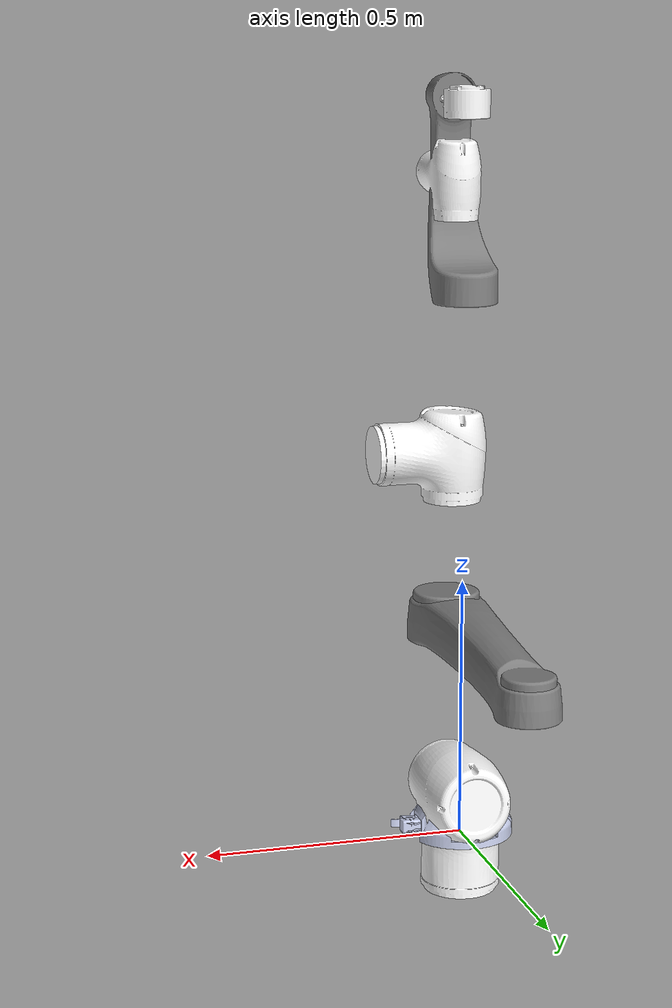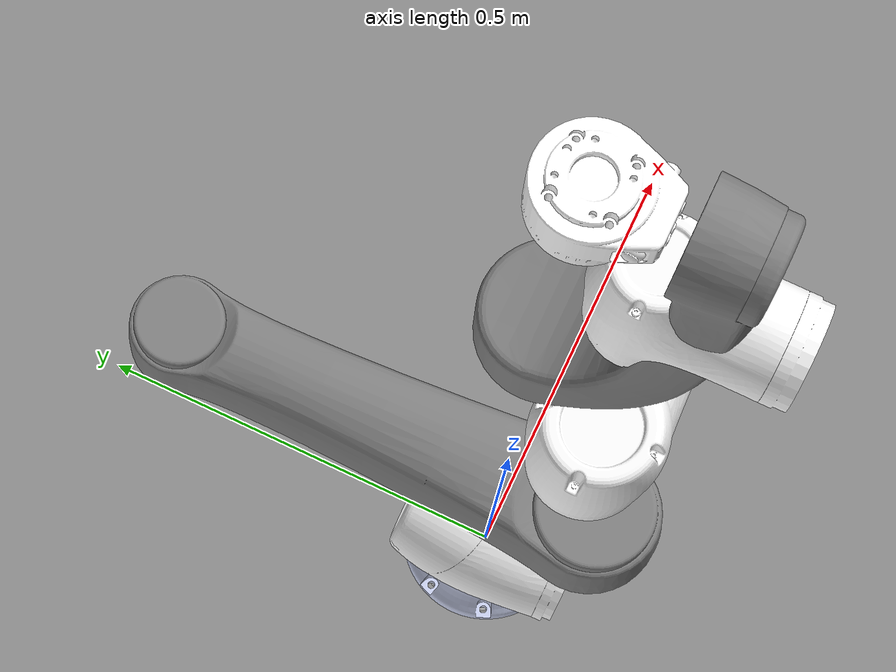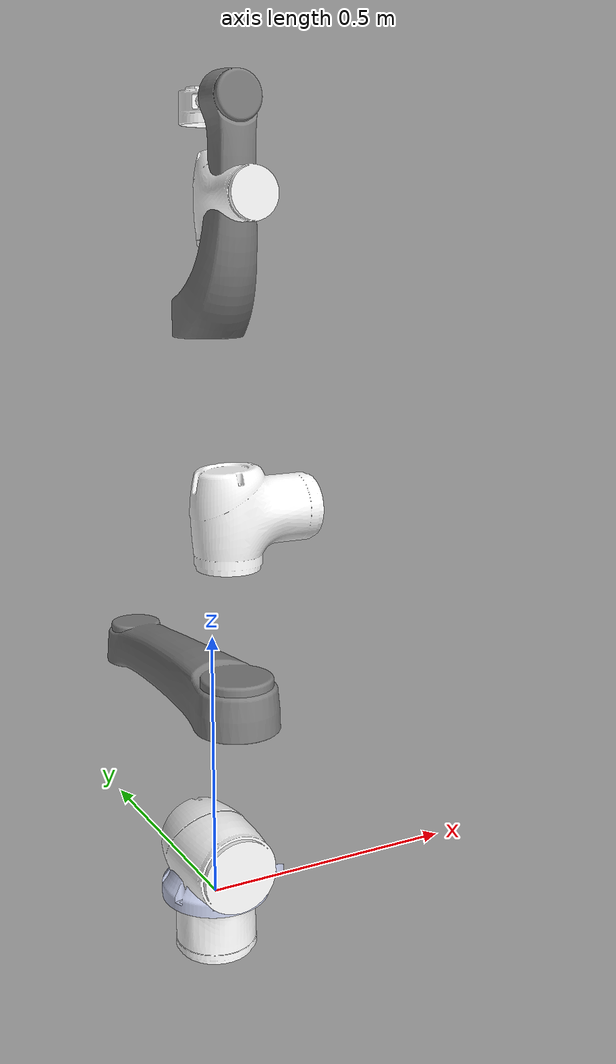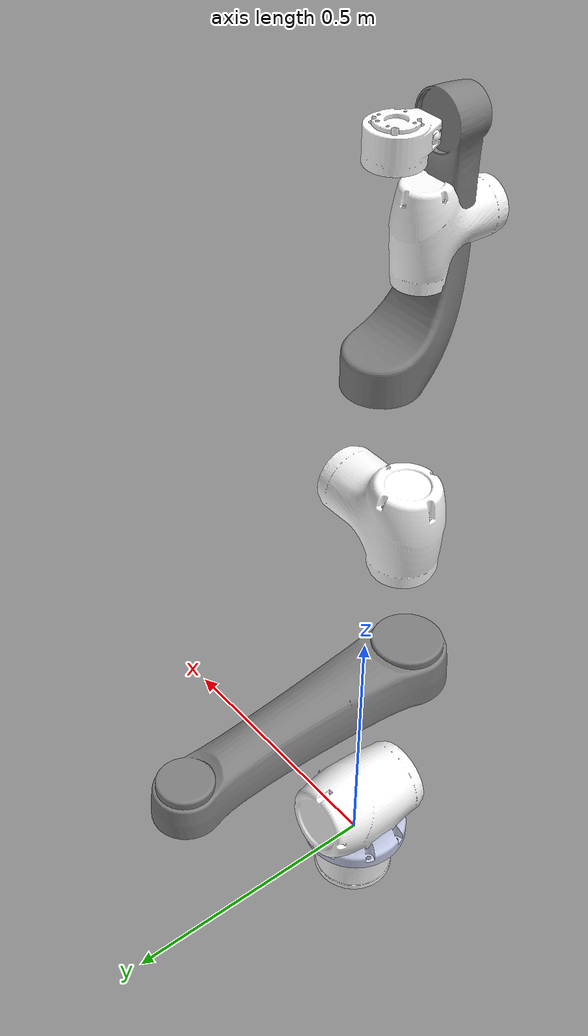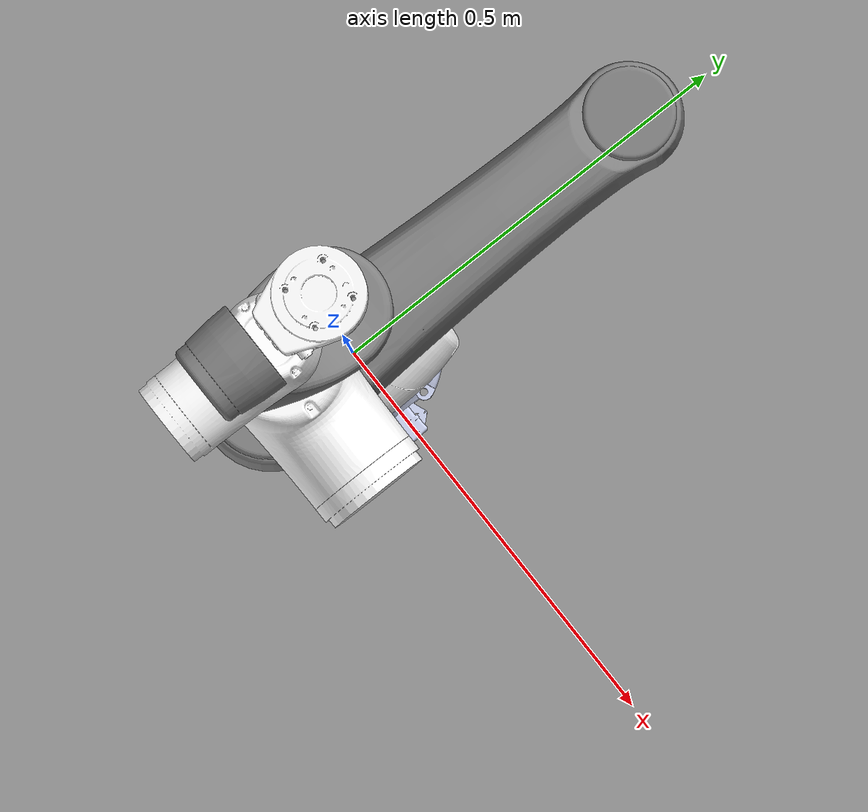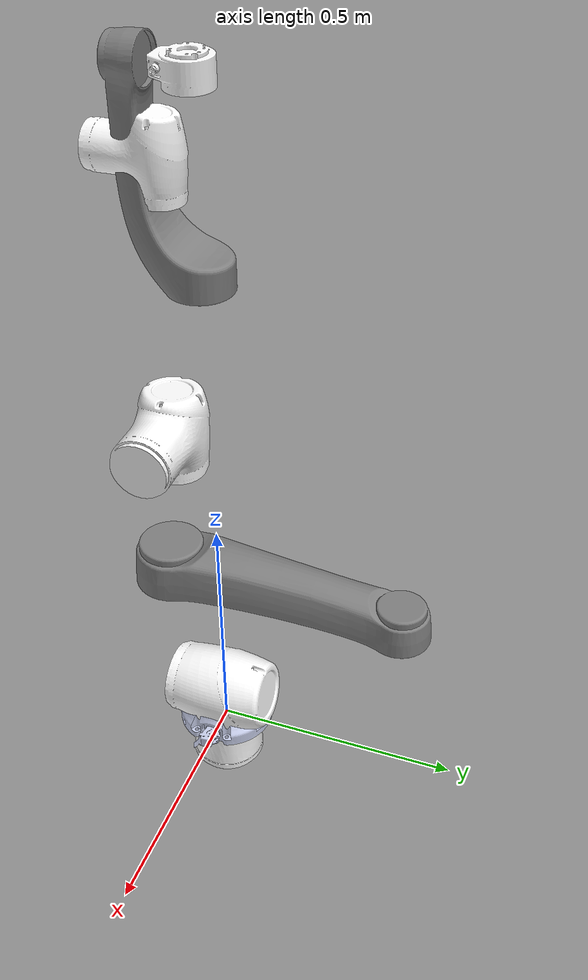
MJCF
<?xml version='1.0' encoding='utf-8'?>
<mujoco model="elfin10">
  <compiler angle="radian" />
  <asset>
    <mesh name="elfin_base_link" content_type="model/stl" file="elfin_base_link.STL" />
    <mesh name="elfin_link1" file="elfin_link1.STL" />
    <mesh name="elfin_link2" file="elfin_link2.STL" />
    <mesh name="elfin_link3" file="elfin_link3.STL" />
    <mesh name="elfin_link4" file="elfin_link4.STL" />
    <mesh name="elfin_link5" file="elfin_link5.STL" />
    <mesh name="elfin_link6" file="elfin_link6.STL" />
  </asset>
  <worldbody>
    <geom pos="0 0 0" quat="1 0 0 -1.8366e-06" type="mesh" rgba="0.792157 0.819608 0.929412 1" mesh="elfin_base_link" />
    <body name="elfin_link1" pos="0 0 0.0794" quat="1 0 0 -1.8366e-06">
      <inertial pos="1.6445e-05 -0.0256037 0.116231" quat="0.980031 0.197223 0.00501529 -0.0248437" mass="5.06677" diaginertia="0.0432025 0.0430696 0.0157154" />
      <joint name="elfin_joint1" pos="0 0 0" axis="0 0 1" range="-3.14 3.14" actuatorfrcrange="-104 104" />
      <geom type="mesh" rgba="1 1 1 1" mesh="elfin_link1" />
      <body name="elfin_link2" pos="0 -0.1006 0.1806">
        <inertial pos="6.76059e-06 -0.0429999 0.209938" quat="0.706932 -0.0141392 0.0142728 0.706997" mass="1.67178" diaginertia="0.0455533 0.0439485 0.00413034" />
        <joint name="elfin_joint2" pos="0 0 0" axis="0 -1 0" range="-2.35 2.35" actuatorfrcrange="-104 104" />
        <geom type="mesh" rgba="0.501961 0.501961 0.501961 1" mesh="elfin_link2" />
        <body name="elfin_link3" pos="0 0.0296 0.48">
          <inertial pos="-2.62996e-05 0.0490394 0.0521751" quat="0.976204 -0.216466 0.00291022 0.0125985" mass="2.52843" diaginertia="0.0139638 0.013833 0.00488963" />
          <joint name="elfin_joint3" pos="0 0 0" axis="0 1 0" range="-2.61 2.61" actuatorfrcrange="-69 69" />
          <geom type="mesh" rgba="1 1 1 1" mesh="elfin_link3" />
          <body name="elfin_link4" pos="0 0.071 0.145">
            <inertial pos="7.16231e-06 -0.065529 0.159896" quat="0.990948 0.134243 -0.000132357 0.000745195" mass="0.774726" diaginertia="0.0123454 0.0121885 0.00179189" />
            <joint name="elfin_joint4" pos="0 0 0" axis="0 0 1" range="-3.14 3.14" actuatorfrcrange="-69 69" />
            <geom type="mesh" rgba="0.501961 0.501961 0.501961 1" mesh="elfin_link4" />
            <body name="elfin_link5" pos="0 -0.061 0.375">
              <inertial pos="7.94802e-06 0.0434911 0.0377663" quat="0.972108 -0.234529 -0.000243375 -0.00139845" mass="1.07924" diaginertia="0.0034729 0.00332866 0.00121112" />
              <joint name="elfin_joint5" pos="0 0 0" axis="0 1 0" range="-2.56 2.56" actuatorfrcrange="-34 34" />
              <geom type="mesh" rgba="1 1 1 1" mesh="elfin_link5" />
              <body name="elfin_link6" pos="0 0.061 0.109">
                <inertial pos="-9.26613e-05 -0.00817386 0.0354638" quat="0.511525 0.488263 -0.529493 0.468592" mass="0.119883" diaginertia="0.000140184 8.35869e-05 8.11009e-05" />
                <joint name="elfin_joint6" pos="0 0 0" axis="0 0 1" range="-3.14 3.14" actuatorfrcrange="-34 34" />
                <geom type="mesh" rgba="1 1 1 1" mesh="elfin_link6" />
              </body>
            </body>
          </body>
        </body>
      </body>
    </body>
  </worldbody>
  <actuator>
    <general name="elfin_joint1_actuator" joint="elfin_joint1" gainprm="1" ctrlrange="-3.14 3.14" />
    <general name="elfin_joint2_actuator" joint="elfin_joint2" gainprm="1" ctrlrange="-3.14 3.14" />
    <general name="elfin_joint3_actuator" joint="elfin_joint3" gainprm="1" ctrlrange="-3.14 3.14" />
    <general name="elfin_joint4_actuator" joint="elfin_joint4" gainprm="1" ctrlrange="-3.14 3.14" />
    <general name="elfin_joint5_actuator" joint="elfin_joint5" gainprm="1" ctrlrange="-3.14 3.14" />
    <general name="elfin_joint6_actuator" joint="elfin_joint6" gainprm="1" ctrlrange="-3.14 3.14" />
  </actuator>
  <keyframe>
    <key name="home" qpos="0 0 0 0 0 0" />
  </keyframe>
</mujoco>
